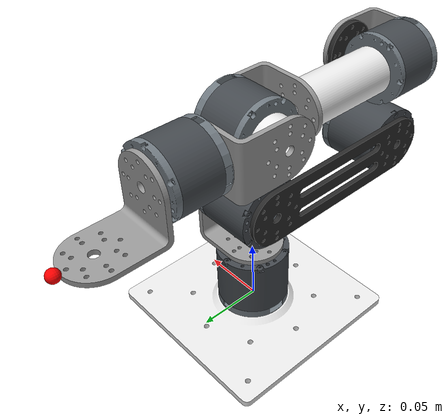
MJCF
<?xml version="1.0" ?>
<!-- Generated using onshape-to-robot -->
<!-- Onshape https://cad.onshape.com/documents/bf6e0747e0cd899219ac657c/w/82278f0897f383a99388b3fa/e/2e25f6a46f62bf396b7a318e -->
<mujoco model="pydmL">
  <compiler angle="radian" meshdir="assets" autolimits="true"/>
  <default>
    <default class="pydmL">
      <joint frictionloss="0.1" armature="0.005"/>
      <position kp="500" dampratio="1"/>
      <default class="visual">
        <geom type="mesh" contype="0" conaffinity="0" group="2"/>
      </default>
      <default class="collision">
        <geom group="3"/>
      </default>
    </default>
  </default>
  <worldbody>
    <body name="target" pos="0 0 0">
      <geom type="sphere" size="0.005" rgba="0 0.8 0 1"/>
    </body>
    <!-- Link broad -->
    <body name="broad" pos="0 0 0" quat="1 0 0 0" childclass="pydmL">
      <inertial pos="-1.5743e-08 -8.67484e-05 0.0242348" mass="1.04351" fullinertia="0.00076785 0.000766062 0.000896953 -1.45834e-07 -3.03e-10 -1.87157e-06"/>
      <!-- Part dm_4340_motor -->
      <geom type="mesh" class="visual" pos="0 0 0.05325" quat="0.707107 -0.707107 0 0" mesh="dm_4340_motor" material="dm_4340_motor_material"/>
      <geom type="mesh" class="collision" pos="0 0 0.05325" quat="0.707107 -0.707107 0 0" mesh="dm_4340_motor" material="dm_4340_motor_material"/>
      <!-- Part broad -->
      <geom type="mesh" class="visual" pos="-0.0285 -0.0285 -0.004" quat="0.707107 -0 0.707107 -0" mesh="broad" material="broad_material"/>
      <geom type="mesh" class="collision" pos="-0.0285 -0.0285 -0.004" quat="0.707107 -0 0.707107 -0" mesh="broad" material="broad_material"/>
      <!-- Part dm_4340_cover -->
      <geom type="mesh" class="visual" pos="0 0 0.05325" quat="0.707107 -0.707107 0 0" mesh="dm_4340_cover" material="dm_4340_cover_material"/>
      <geom type="mesh" class="collision" pos="0 0 0.05325" quat="0.707107 -0.707107 0 0" mesh="dm_4340_cover" material="dm_4340_cover_material"/>
      <!-- Link l_link -->
      <body name="l_link" pos="0 0 0.0533" quat="0 -0.707107 0.707107 -0">
        <!-- Joint from broad to l_link -->
        <joint axis="0 0 1" name="base" type="hinge" range="-3.141592653589793 3.141592653589793"/>
        <inertial pos="-1.5575e-08 -0.00424509 -0.0387974" mass="1.05474" fullinertia="0.000581624 0.000537958 0.000469188 -3.36e-10 1.45774e-07 3.48355e-05"/>
        <!-- Part l_link -->
        <geom type="mesh" class="visual" pos="-0.0285 -0.0305 -0.004" quat="0.5 -0.5 -0.5 -0.5" mesh="l_link" material="l_link_material"/>
        <geom type="mesh" class="collision" pos="-0.0285 -0.0305 -0.004" quat="0.5 -0.5 -0.5 -0.5" mesh="l_link" material="l_link_material"/>
        <!-- Part dm_4340_motor_2 -->
        <geom type="mesh" class="visual" pos="0 0.02275 -0.0425" quat="0 -1 -0 -0" mesh="dm_4340_motor" material="dm_4340_motor_material"/>
        <geom type="mesh" class="collision" pos="0 0.02275 -0.0425" quat="0 -1 -0 -0" mesh="dm_4340_motor" material="dm_4340_motor_material"/>
        <!-- Part dm_4340_cover_2 -->
        <geom type="mesh" class="visual" pos="0 0.02275 -0.0425" quat="0 -1 -0 -0" mesh="dm_4340_cover" material="dm_4340_cover_material"/>
        <geom type="mesh" class="collision" pos="0 0.02275 -0.0425" quat="0 -1 -0 -0" mesh="dm_4340_cover" material="dm_4340_cover_material"/>
        <!-- Link long_link -->
        <body name="long_link" pos="0 0.0228 -0.0425" quat="0.707107 0.707107 -0 -0">
          <!-- Joint from l_link to long_link -->
          <joint axis="0 0 1" name="shoulder" type="hinge" range="-3.141592653589793 0.0"/>
          <inertial pos="0.0685 -0 -0.002" mass="0.0398304" fullinertia="7.58759e-06 0.000113033 0.000120515 -0 0 0"/>
          <!-- Part long_link -->
          <geom type="mesh" class="visual" pos="0.1655 0.0285 0" quat="0 0 0 -1" mesh="long_link" material="long_link_material"/>
          <geom type="mesh" class="collision" pos="0.1655 0.0285 0" quat="0 0 0 -1" mesh="long_link" material="long_link_material"/>
          <!-- Link dm_4340_motor -->
          <body name="dm_4340_motor" pos="0.137 -0 0" quat="0 -0 1 0">
            <!-- Joint from long_link to dm_4340_motor -->
            <joint axis="0 0 1" name="elbow" type="hinge" range="-3.1415926710415256 0.017453275068210792"/>
            <inertial pos="-0.00412952 -0.0331055 -0.0241223" mass="1.85612" fullinertia="0.00281273 0.000886552 0.00272285 -0.000244665 -1.17356e-05 2.97086e-05"/>
            <!-- Part l_link_2 -->
            <geom type="mesh" class="visual" pos="-0.0305 -0.0935 -0.0573" quat="0.707107 -6.17e-09 0.707107 6.17e-09" mesh="l_link" material="l_link_material"/>
            <geom type="mesh" class="collision" pos="-0.0305 -0.0935 -0.0573" quat="0.707107 -6.17e-09 0.707107 6.17e-09" mesh="l_link" material="l_link_material"/>
            <!-- Part dm_4340_cover_3 -->
            <geom type="mesh" class="visual" pos="-0 0 -5e-05" quat="0.707107 -0.707107 -6.171e-09 6.171e-09" mesh="dm_4340_cover" material="dm_4340_cover_material"/>
            <geom type="mesh" class="collision" pos="-0 0 -5e-05" quat="0.707107 -0.707107 -6.171e-09 6.171e-09" mesh="dm_4340_cover" material="dm_4340_cover_material"/>
            <!-- Part short_link -->
            <geom type="mesh" class="visual" pos="0.0285 -0.0935 -0.0533" quat="0.707107 0 -0 0.707107" mesh="short_link" material="short_link_material"/>
            <geom type="mesh" class="collision" pos="0.0285 -0.0935 -0.0533" quat="0.707107 0 -0 0.707107" mesh="short_link" material="short_link_material"/>
            <!-- Part dm_4310_cover -->
            <geom type="mesh" class="visual" pos="0.015 -0.0650125 -0.0189736" quat="0.5 -0.5 0.5 0.5" mesh="dm_4310_cover" material="dm_4310_cover_material"/>
            <geom type="mesh" class="collision" pos="0.015 -0.0650125 -0.0189736" quat="0.5 -0.5 0.5 0.5" mesh="dm_4310_cover" material="dm_4310_cover_material"/>
            <!-- Part dm_4340_motor_3 -->
            <geom type="mesh" class="visual" pos="-0 0 -5e-05" quat="0.707107 -0.707107 -6.171e-09 6.171e-09" mesh="dm_4340_motor" material="dm_4340_motor_material"/>
            <geom type="mesh" class="collision" pos="-0 0 -5e-05" quat="0.707107 -0.707107 -6.171e-09 6.171e-09" mesh="dm_4340_motor" material="dm_4340_motor_material"/>
            <!-- Part dm_4310_adapter -->
            <geom type="mesh" class="visual" pos="0.015 -0.0650125 -0.0189736" quat="0.5 -0.5 0.5 0.5" mesh="dm_4310_adapter" material="dm_4310_adapter_material"/>
            <geom type="mesh" class="collision" pos="0.015 -0.0650125 -0.0189736" quat="0.5 -0.5 0.5 0.5" mesh="dm_4310_adapter" material="dm_4310_adapter_material"/>
            <!-- Part dm_4310_motor -->
            <geom type="mesh" class="visual" pos="0.015 -0.0650125 -0.0189736" quat="0.5 -0.5 0.5 0.5" mesh="dm_4310_motor" material="dm_4310_motor_material"/>
            <geom type="mesh" class="collision" pos="0.015 -0.0650125 -0.0189736" quat="0.5 -0.5 0.5 0.5" mesh="dm_4310_motor" material="dm_4310_motor_material"/>
            <!-- Link l_link_2 -->
            <body name="l_link_2" pos="0.0155 -0.0650125 -0.0189736" quat="6.17e-09 0.707107 6.17e-09 -0.707107">
              <!-- Joint from dm_4340_motor to l_link_2 -->
              <joint axis="0 0 1" name="wrist_1" type="hinge" range="-3.1415926535892646 3.1415926535903216"/>
              <inertial pos="0.00743051 -9.21972e-06 -0.110513" mass="1.03154" fullinertia="0.00110244 0.00109921 0.000390465 -1.8913e-08 3.9346e-05 4.0329e-08"/>
              <!-- Part dm_4310_cover_2 -->
              <geom type="mesh" class="visual" pos="-0.015 -1.24934e-05 -0.122326" quat="0.5 -0.5 -0.5 -0.5" mesh="dm_4310_cover" material="dm_4310_cover_material"/>
              <geom type="mesh" class="collision" pos="-0.015 -1.24934e-05 -0.122326" quat="0.5 -0.5 -0.5 -0.5" mesh="dm_4310_cover" material="dm_4310_cover_material"/>
              <!-- Part l_link_3 -->
              <geom type="mesh" class="visual" pos="0.0305 -0.0285 -0.084" quat="0.707107 0 -0.707107 0" mesh="l_link" material="l_link_material"/>
              <geom type="mesh" class="collision" pos="0.0305 -0.0285 -0.084" quat="0.707107 0 -0.707107 0" mesh="l_link" material="l_link_material"/>
              <!-- Part dm_4310_adapter_2 -->
              <geom type="mesh" class="visual" pos="-0.015 -1.24934e-05 -0.122326" quat="0.5 -0.5 -0.5 -0.5" mesh="dm_4310_adapter" material="dm_4310_adapter_material"/>
              <geom type="mesh" class="collision" pos="-0.015 -1.24934e-05 -0.122326" quat="0.5 -0.5 -0.5 -0.5" mesh="dm_4310_adapter" material="dm_4310_adapter_material"/>
              <!-- Part link_cylinder -->
              <geom type="mesh" class="visual" pos="-0.0285 0.0305 0" quat="0.5 0.5 0.5 -0.5" mesh="link_cylinder" material="link_cylinder_material"/>
              <geom type="mesh" class="collision" pos="-0.0285 0.0305 0" quat="0.5 0.5 0.5 -0.5" mesh="link_cylinder" material="link_cylinder_material"/>
              <!-- Part dm_4310_motor_2 -->
              <geom type="mesh" class="visual" pos="-0.015 -1.24934e-05 -0.122326" quat="0.5 -0.5 -0.5 -0.5" mesh="dm_4310_motor" material="dm_4310_motor_material"/>
              <geom type="mesh" class="collision" pos="-0.015 -1.24934e-05 -0.122326" quat="0.5 -0.5 -0.5 -0.5" mesh="dm_4310_motor" material="dm_4310_motor_material"/>
              <!-- Link l_link_3 -->
              <body name="l_link_3" pos="-0.0155 -1.24934e-05 -0.122326" quat="0.707107 0 0.707107 0">
                <!-- Joint from l_link_2 to l_link_3 -->
                <joint axis="0 0 1" name="wrist_2" type="hinge" range="-1.7453292519943358 1.7453292519943233"/>
                <inertial pos="0.0589152 -0.00025223 0.0116837" mass="0.949695" fullinertia="0.000455129 0.000734988 0.00066214 -1.80934e-07 -0.000165196 1.0685e-06"/>
                <!-- Part l_link_4 -->
                <geom type="mesh" class="visual" pos="0.0385 -0.0285 -0.015" quat="1 -0 -0 -0" mesh="l_link" material="l_link_material"/>
                <geom type="mesh" class="collision" pos="0.0385 -0.0285 -0.015" quat="1 -0 -0 -0" mesh="l_link" material="l_link_material"/>
                <!-- Part dm_4310_motor_3 -->
                <geom type="mesh" class="visual" pos="0.088 -0.000173555 0.0155125" quat="0 -0.707107 0.707107 -0" mesh="dm_4310_motor" material="dm_4310_motor_material"/>
                <geom type="mesh" class="collision" pos="0.088 -0.000173555 0.0155125" quat="0 -0.707107 0.707107 -0" mesh="dm_4310_motor" material="dm_4310_motor_material"/>
                <!-- Part dm_4310_adapter_3 -->
                <geom type="mesh" class="visual" pos="0.088 -0.000173555 0.0155125" quat="0 -0.707107 0.707107 -0" mesh="dm_4310_adapter" material="dm_4310_adapter_material"/>
                <geom type="mesh" class="collision" pos="0.088 -0.000173555 0.0155125" quat="0 -0.707107 0.707107 -0" mesh="dm_4310_adapter" material="dm_4310_adapter_material"/>
                <!-- Part dm_4310_cover_3 -->
                <geom type="mesh" class="visual" pos="0.088 -0.000173555 0.0155125" quat="0 -0.707107 0.707107 -0" mesh="dm_4310_cover" material="dm_4310_cover_material"/>
                <geom type="mesh" class="collision" pos="0.088 -0.000173555 0.0155125" quat="0 -0.707107 0.707107 -0" mesh="dm_4310_cover" material="dm_4310_cover_material"/>
                <!-- Part link_cylinder_2 -->
                <geom type="mesh" class="visual" pos="-0.0285 0.0305 -0" quat="0.5 0.5 0.5 -0.5" mesh="link_cylinder__2" material="link_cylinder__2_material"/>
                <geom type="mesh" class="collision" pos="-0.0285 0.0305 -0" quat="0.5 0.5 0.5 -0.5" mesh="link_cylinder__2" material="link_cylinder__2_material"/>
                <!-- Link l_link_4 -->
                <body name="l_link_4" pos="0.0885 -0.000173555 0.0155125" quat="0.707107 0 -0.707107 0">
                  <!-- Joint from l_link_3 to l_link_4 -->
                  <joint axis="0 0 1" name="wrist_3" type="hinge" range="-3.1415926535897754 3.141592653589811"/>
                  <inertial pos="-0 -0.0205837 -0.0179579" mass="0.155436" fullinertia="0.000102066 8.75509e-05 7.05877e-05 -0 -0 -2.95462e-05"/>
                  <!-- Part l_link_5 -->
                  <geom type="mesh" class="visual" pos="-0.0285 -0.0305 -0.004" quat="0.5 -0.5 -0.5 -0.5" mesh="l_link" material="l_link_material"/>
                  <geom type="mesh" class="collision" pos="-0.0285 -0.0305 -0.004" quat="0.5 -0.5 -0.5 -0.5" mesh="l_link" material="l_link_material"/>
                  <site name="ee" pos="0 -0.03 -0.07" size="0.005" rgba="1 0 0 1"/>
                </body>
              </body>
            </body>
          </body>
        </body>
      </body>
    </body>
  </worldbody>
  <asset>
    <mesh file="link_cylinder__2.stl"/>
    <mesh file="link_cylinder.stl"/>
    <mesh file="dm_4340_motor.stl"/>
    <mesh file="dm_4340_cover.stl"/>
    <mesh file="l_link.stl"/>
    <mesh file="dm_4310_cover.stl"/>
    <mesh file="broad.stl"/>
    <mesh file="long_link.stl"/>
    <mesh file="dm_4310_motor.stl"/>
    <mesh file="short_link.stl"/>
    <mesh file="dm_4310_adapter.stl"/>
    <material name="dm_4340_motor_material" rgba="0.262745 0.282353 0.301961 1"/>
    <material name="broad_material" rgba="0.917647 0.917647 0.917647 1"/>
    <material name="dm_4340_cover_material" rgba="0.439216 0.47451 0.501961 1"/>
    <material name="l_link_material" rgba="0.6 0.6 0.6 1"/>
    <material name="long_link_material" rgba="0.156863 0.156863 0.156863 1"/>
    <material name="short_link_material" rgba="0.156863 0.156863 0.156863 1"/>
    <material name="dm_4310_cover_material" rgba="0.439216 0.47451 0.501961 1"/>
    <material name="dm_4310_adapter_material" rgba="0.439216 0.47451 0.501961 1"/>
    <material name="dm_4310_motor_material" rgba="0.262745 0.282353 0.301961 1"/>
    <material name="link_cylinder_material" rgba="0.917647 0.917647 0.917647 1"/>
    <material name="link_cylinder__2_material" rgba="0.917647 0.917647 0.917647 1"/>
  </asset>
  <actuator>
    <position class="pydmL" name="base" joint="base" inheritrange="1"/>
    <position class="pydmL" name="shoulder" joint="shoulder" inheritrange="1"/>
    <position class="pydmL" name="elbow" joint="elbow" inheritrange="1"/>
    <position class="pydmL" name="wrist_1" joint="wrist_1" inheritrange="1"/>
    <position class="pydmL" name="wrist_2" joint="wrist_2" inheritrange="1"/>
    <position class="pydmL" name="wrist_3" joint="wrist_3" inheritrange="1"/>
  </actuator>
  <equality/>
</mujoco>
